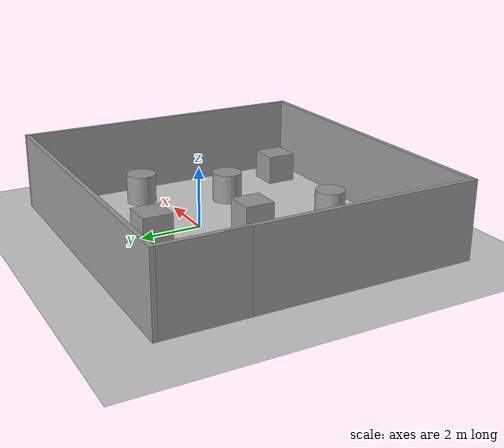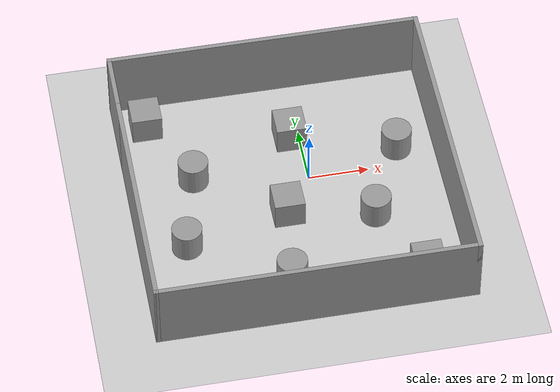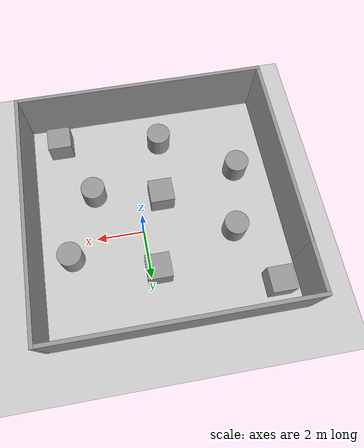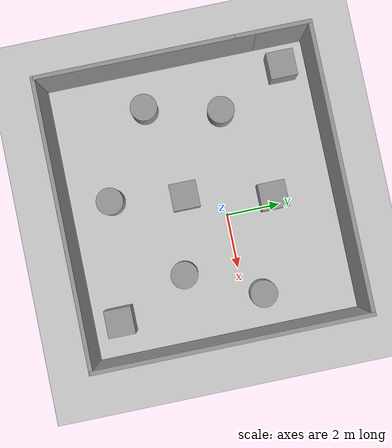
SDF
<sdf version="1.7">
 <world name="default">
  <light name="sun" type="directional">
   <pose>0 0 10 0 -0 0</pose>
   <diffuse>0.8 0.8 0.8 1</diffuse>
   <specular>0.2 0.2 0.2 1</specular>
   <attenuation>
    <range>1000</range>
    <constant>0.9</constant>
    <linear>0.01</linear>
    <quadratic>0.001</quadratic>
   </attenuation>
   <direction>-0.5 0.1 -0.9</direction>
   <spot><inner_angle>0</inner_angle><outer_angle>0</outer_angle><falloff>0</falloff></spot>
  </light>
  <model name="ground_plane">
   <static>1</static>
   <link name="link">
    <collision name="collision">
     <geometry><plane><normal>0 0 1</normal><size>100 100</size></plane></geometry>
     <surface>
      <contact><collide_bitmask>65535</collide_bitmask></contact>
      <friction><ode><mu>100</mu><mu2>50</mu2></ode></friction>
     </surface>
    </collision>
    <visual name="visual">
     <cast_shadows>0</cast_shadows>
     <geometry><plane><normal>0 0 1</normal><size>100 100</size></plane></geometry>
     <material>
      <script><uri>file://media/materials/scripts/gazebo.material</uri><name>Gazebo/Grey</name></script>
     </material>
    </visual>
   </link>
  </model>
  <gravity>0 0 -9.8</gravity>
  <magnetic_field>6e-06 2.3e-05 -4.2e-05</magnetic_field>
  <atmosphere type="adiabatic"/>
  <physics type="ode">
   <max_step_size>0.001</max_step_size>
   <real_time_factor>1</real_time_factor>
   <real_time_update_rate>1000</real_time_update_rate>
  </physics>
  <scene><ambient>0.4 0.4 0.4 1</ambient><background>0.7 0.7 0.7 1</background><shadows>1</shadows></scene>
  <spherical_coordinates>
   <surface_model>EARTH_WGS84</surface_model>
   <latitude_deg>0</latitude_deg>
   <longitude_deg>0</longitude_deg>
   <elevation>0</elevation>
   <heading_deg>0</heading_deg>
  </spherical_coordinates>
  <model name="multi10x10">
   <pose>-0.774296 -0.793416 0 0 -0 0</pose>
   <link name="Wall_1">
    <collision name="Wall_1_Collision">
     <geometry><box><size>8 0.15 2.5</size></box></geometry>
     <pose>0 0 1.25 0 -0 0</pose>
    </collision>
    <visual name="Wall_1_Visual">
     <pose>0 0 1.25 0 -0 0</pose>
     <geometry><box><size>8 0.15 2.5</size></box></geometry>
     <material>
      <script><uri>file://media/materials/scripts/gazebo.material</uri><name>Gazebo/Grey</name></script>
      <ambient>1 1 1 1</ambient>
     </material>
     <meta><layer>0</layer></meta>
    </visual>
    <pose>-5.175 -1 0 0 -0 -1.5708</pose>
   </link>
   <link name="Wall_2">
    <collision name="Wall_2_Collision">
     <geometry><box><size>10.5 0.15 2.5</size></box></geometry>
     <pose>0 0 1.25 0 -0 0</pose>
    </collision>
    <visual name="Wall_2_Visual">
     <pose>0 0 1.25 0 -0 0</pose>
     <geometry><box><size>10.5 0.15 2.5</size></box></geometry>
     <material>
      <script><uri>file://media/materials/scripts/gazebo.material</uri><name>Gazebo/Grey</name></script>
      <ambient>1 1 1 1</ambient>
     </material>
     <meta><layer>0</layer></meta>
    </visual>
    <pose>-0 -4.925 0 0 -0 0</pose>
   </link>
   <link name="Wall_3">
    <collision name="Wall_3_Collision">
     <geometry><box><size>10 0.15 2.5</size></box></geometry>
     <pose>0 0 1.25 0 -0 0</pose>
    </collision>
    <visual name="Wall_3_Visual">
     <pose>0 0 1.25 0 -0 0</pose>
     <geometry><box><size>10 0.15 2.5</size></box></geometry>
     <material>
      <script><uri>file://media/materials/scripts/gazebo.material</uri><name>Gazebo/Grey</name></script>
      <ambient>1 1 1 1</ambient>
     </material>
     <meta><layer>0</layer></meta>
    </visual>
    <pose>5.175 -0 0 0 -0 1.5708</pose>
   </link>
   <link name="Wall_4">
    <collision name="Wall_4_Collision">
     <geometry><box><size>10.5 0.15 2.5</size></box></geometry>
     <pose>0 0 1.25 0 -0 0</pose>
    </collision>
    <visual name="Wall_4_Visual">
     <pose>0 0 1.25 0 -0 0</pose>
     <geometry><box><size>10.5 0.15 2.5</size></box></geometry>
     <material>
      <script><uri>file://media/materials/scripts/gazebo.material</uri><name>Gazebo/Grey</name></script>
      <ambient>1 1 1 1</ambient>
     </material>
     <meta><layer>0</layer></meta>
    </visual>
    <pose>-0 4.925 0 0 -0 3.14159</pose>
   </link>
   <link name="Wall_5">
    <collision name="Wall_5_Collision">
     <geometry><box><size>2.75 0.15 2.5</size></box></geometry>
     <pose>0 0 1.25 0 -0 0</pose>
    </collision>
    <visual name="Wall_5_Visual">
     <pose>0 0 1.25 0 -0 0</pose>
     <geometry><box><size>2.75 0.15 2.5</size></box></geometry>
     <material>
      <script><uri>file://media/materials/scripts/gazebo.material</uri><name>Gazebo/Grey</name></script>
      <ambient>1 1 1 1</ambient>
     </material>
     <meta><layer>0</layer></meta>
    </visual>
    <pose>-5.175 3.625 0 0 -0 -1.5708</pose>
   </link>
   <static>1</static>
  </model>
  <model name="unit_box">
   <pose>-4.97508 3.07186 0.499995 0 1e-05 0</pose>
   <link name="link">
    <inertial>
     <mass>1</mass>
     <inertia>
      <ixx>0.166667</ixx>
      <ixy>0</ixy>
      <ixz>0</ixz>
      <iyy>0.166667</iyy>
      <iyz>0</iyz>
      <izz>0.166667</izz>
     </inertia>
    </inertial>
    <collision name="collision"><geometry><box><size>1 1 1</size></box></geometry></collision>
    <visual name="visual">
     <geometry><box><size>1 1 1</size></box></geometry>
     <material>
      <script><name>Gazebo/Grey</name><uri>file://media/materials/scripts/gazebo.material</uri></script>
     </material>
    </visual>
   </link>
  </model>
  <model name="unit_cylinder">
   <pose>-3.77305 0.54457 0.499998 3e-06 -4e-06 0</pose>
   <link name="link">
    <inertial>
     <mass>1</mass>
     <inertia><ixx>0.145833</ixx><ixy>0</ixy><ixz>0</ixz><iyy>0.145833</iyy><iyz>0</iyz><izz>0.125</izz></inertia>
    </inertial>
    <collision name="collision">
     <geometry><cylinder><radius>0.5</radius><length>1</length></cylinder></geometry>
    </collision>
    <visual name="visual">
     <geometry><cylinder><radius>0.5</radius><length>1</length></cylinder></geometry>
     <material>
      <script><name>Gazebo/Grey</name><uri>file://media/materials/scripts/gazebo.material</uri></script>
     </material>
    </visual>
   </link>
  </model>
  <model name="unit_cylinder_0">
   <pose>-4.42979 -2.19927 0.499992 -3e-06 4e-06 0</pose>
   <link name="link">
    <inertial>
     <mass>1</mass>
     <inertia><ixx>0.145833</ixx><ixy>0</ixy><ixz>0</ixz><iyy>0.145833</iyy><iyz>0</iyz><izz>0.125</izz></inertia>
    </inertial>
    <collision name="collision">
     <geometry><cylinder><radius>0.5</radius><length>1</length></cylinder></geometry>
    </collision>
    <visual name="visual">
     <geometry><cylinder><radius>0.5</radius><length>1</length></cylinder></geometry>
     <material>
      <script><name>Gazebo/Grey</name><uri>file://media/materials/scripts/gazebo.material</uri></script>
     </material>
    </visual>
   </link>
  </model>
  <model name="unit_box_0">
   <pose>3.02733 -4.60621 0.499995 -1e-05 -0 -0</pose>
   <link name="link">
    <inertial>
     <mass>1</mass>
     <inertia>
      <ixx>0.166667</ixx>
      <ixy>0</ixy>
      <ixz>0</ixz>
      <iyy>0.166667</iyy>
      <iyz>0</iyz>
      <izz>0.166667</izz>
     </inertia>
    </inertial>
    <collision name="collision"><geometry><box><size>1 1 1</size></box></geometry></collision>
    <visual name="visual">
     <geometry><box><size>1 1 1</size></box></geometry>
     <material>
      <script><name>Gazebo/Grey</name><uri>file://media/materials/scripts/gazebo.material</uri></script>
     </material>
    </visual>
   </link>
  </model>
  <model name="unit_box_1">
   <pose>-0.327893 1.77384 0.499995 0 1e-05 0</pose>
   <link name="link">
    <inertial>
     <mass>1</mass>
     <inertia>
      <ixx>0.166667</ixx>
      <ixy>0</ixy>
      <ixz>0</ixz>
      <iyy>0.166667</iyy>
      <iyz>0</iyz>
      <izz>0.166667</izz>
     </inertia>
    </inertial>
    <collision name="collision"><geometry><box><size>1 1 1</size></box></geometry></collision>
    <visual name="visual">
     <geometry><box><size>1 1 1</size></box></geometry>
     <material>
      <script><name>Gazebo/Grey</name><uri>file://media/materials/scripts/gazebo.material</uri></script>
     </material>
    </visual>
   </link>
  </model>
  <model name="unit_cylinder_1">
   <pose>3.08136 0.702757 0.499993 -3e-06 -3e-06 0</pose>
   <link name="link">
    <inertial>
     <mass>1</mass>
     <inertia><ixx>0.145833</ixx><ixy>0</ixy><ixz>0</ixz><iyy>0.145833</iyy><iyz>0</iyz><izz>0.125</izz></inertia>
    </inertial>
    <collision name="collision">
     <geometry><cylinder><radius>0.5</radius><length>1</length></cylinder></geometry>
    </collision>
    <visual name="visual">
     <geometry><cylinder><radius>0.5</radius><length>1</length></cylinder></geometry>
     <material>
      <script><name>Gazebo/Grey</name><uri>file://media/materials/scripts/gazebo.material</uri></script>
     </material>
    </visual>
   </link>
  </model>
  <model name="unit_cylinder_2">
   <pose>1.84424 -1.97542 0.499997 3e-06 4e-06 -0</pose>
   <link name="link">
    <inertial>
     <mass>1</mass>
     <inertia><ixx>0.145833</ixx><ixy>0</ixy><ixz>0</ixz><iyy>0.145833</iyy><iyz>0</iyz><izz>0.125</izz></inertia>
    </inertial>
    <collision name="collision">
     <geometry><cylinder><radius>0.5</radius><length>1</length></cylinder></geometry>
    </collision>
    <visual name="visual">
     <geometry><cylinder><radius>0.5</radius><length>1</length></cylinder></geometry>
     <material>
      <script><name>Gazebo/Grey</name><uri>file://media/materials/scripts/gazebo.material</uri></script>
     </material>
    </visual>
   </link>
  </model>
  <model name="unit_box_2">
   <pose>-0.975526 -1.3919 0.499995 -1e-05 -0 0</pose>
   <link name="link">
    <inertial>
     <mass>1</mass>
     <inertia>
      <ixx>0.166667</ixx>
      <ixy>0</ixy>
      <ixz>0</ixz>
      <iyy>0.166667</iyy>
      <iyz>0</iyz>
      <izz>0.166667</izz>
     </inertia>
    </inertial>
    <collision name="collision"><geometry><box><size>1 1 1</size></box></geometry></collision>
    <visual name="visual">
     <geometry><box><size>1 1 1</size></box></geometry>
     <material>
      <script><name>Gazebo/Grey</name><uri>file://media/materials/scripts/gazebo.material</uri></script>
     </material>
    </visual>
   </link>
  </model>
  <model name="unit_cylinder_3">
   <pose>-1.32305 -4.09116 0.499997 3e-06 4e-06 -0</pose>
   <link name="link">
    <inertial>
     <mass>1</mass>
     <inertia><ixx>0.145833</ixx><ixy>0</ixy><ixz>0</ixz><iyy>0.145833</iyy><iyz>0</iyz><izz>0.125</izz></inertia>
    </inertial>
    <collision name="collision">
     <geometry><cylinder><radius>0.5</radius><length>1</length></cylinder></geometry>
    </collision>
    <visual name="visual">
     <geometry><cylinder><radius>0.5</radius><length>1</length></cylinder></geometry>
     <material>
      <script><name>Gazebo/Grey</name><uri>file://media/materials/scripts/gazebo.material</uri></script>
     </material>
    </visual>
   </link>
  </model>
 </world>
</sdf>
